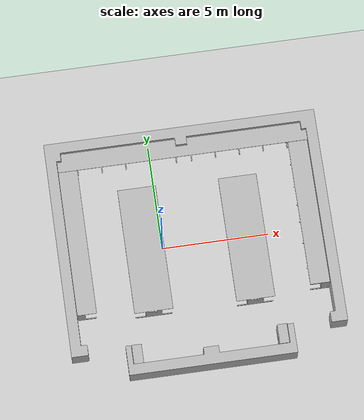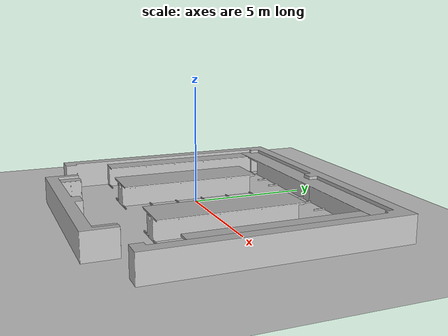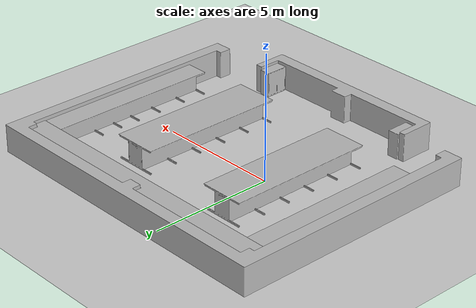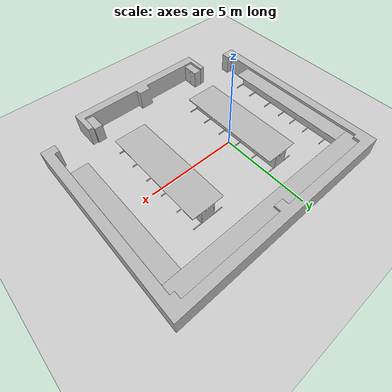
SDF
<sdf version="1.10">
 <world name="empty">
  <physics name="1ms" type="ignored">
   <max_step_size>0.001</max_step_size>
   <real_time_factor>1</real_time_factor>
   <real_time_update_rate>1000</real_time_update_rate>
  </physics>
  <plugin name="gz::sim::systems::Physics" filename="gz-sim-physics-system"/>
  <plugin name="gz::sim::systems::UserCommands" filename="gz-sim-user-commands-system"/>
  <plugin name="gz::sim::systems::SceneBroadcaster" filename="gz-sim-scene-broadcaster-system"/>
  <plugin name="gz::sim::systems::Sensors" filename="gz-sim-sensors-system"/>
  <plugin name="gz::sim::systems::Imu" filename="gz-sim-imu-system"/>
  <plugin name="gz::sim::systems::Contact" filename="gz-sim-contact-system"/>
  <gravity>0 0 -9.8000000000000007</gravity>
  <magnetic_field>5.5644999999999998e-06 2.2875799999999999e-05 -4.2388400000000002e-05</magnetic_field>
  <atmosphere type="adiabatic"/>
  <scene>
   <ambient>0.400000006 0.400000006 0.400000006 1</ambient>
   <background>0.699999988 0.699999988 0.699999988 1</background>
   <shadows>true</shadows>
  </scene>
  <model name="ground_plane">
   <static>true</static>
   <link name="link">
    <collision name="collision">
     <geometry><plane><normal>0 0 1</normal><size>100 100</size></plane></geometry>
    </collision>
    <visual name="visual">
     <geometry><plane><normal>0 0 1</normal><size>100 100</size></plane></geometry>
     <material>
      <ambient>0.800000012 0.800000012 0.800000012 1</ambient>
      <diffuse>0.800000012 0.800000012 0.800000012 1</diffuse>
      <specular>0.800000012 0.800000012 0.800000012 1</specular>
     </material>
    </visual>
    <inertial>
     <mass>1</mass>
     <inertia><ixx>1</ixx><ixy>0</ixy><ixz>0</ixz><iyy>1</iyy><iyz>0</iyz><izz>1</izz></inertia>
    </inertial>
   </link>
  </model>
  <model name="backside_wall">
   <link name="link">
    <visual name="visual">
     <geometry>
      <mesh>
       <uri>file:///home/abdvswmdr/Documents/afya_sim/src/model/backside_wall/meshes/backside_wall.obj</uri>
      </mesh>
     </geometry>
    </visual>
    <collision name="collision">
     <geometry>
      <mesh>
       <uri>file:///home/abdvswmdr/Documents/afya_sim/src/model/backside_wall/meshes/backside_wall.obj</uri>
      </mesh>
     </geometry>
    </collision>
    <inertial>
     <mass>1</mass>
     <inertia><ixx>1</ixx><ixy>0</ixy><ixz>0</ixz><iyy>1</iyy><iyz>0</iyz><izz>1</izz></inertia>
    </inertial>
   </link>
   <pose>-5 -5 -6.505213034905138e-19 1.5700000000000001 0 0</pose>
   <static>true</static>
  </model>
  <model name="front_wall">
   <link name="link">
    <visual name="visual">
     <geometry>
      <mesh><uri>file:///home/abdvswmdr/Documents/afya_sim/src/model/front_wall/meshes/front_wall.obj</uri></mesh>
     </geometry>
    </visual>
    <collision name="collision">
     <geometry>
      <mesh><uri>file:///home/abdvswmdr/Documents/afya_sim/src/model/front_wall/meshes/front_wall.obj</uri></mesh>
     </geometry>
    </collision>
    <inertial>
     <mass>1</mass>
     <inertia><ixx>1</ixx><ixy>0</ixy><ixz>0</ixz><iyy>1</iyy><iyz>0</iyz><izz>1</izz></inertia>
    </inertial>
   </link>
   <pose>-2.4300000000000002 -6.1500000000000021 -2.0599841276352893e-19 1.5700000000000001 0 0</pose>
   <static>true</static>
  </model>
  <model name="fyp_projectlab5">
   <link name="link">
    <visual name="visual">
     <geometry>
      <mesh>
       <uri>file:///home/abdvswmdr/Documents/afya_sim/src/model/fyp_projectlab5/meshes/fyp_projectlab5.dae</uri>
      </mesh>
     </geometry>
    </visual>
    <collision name="collision">
     <geometry>
      <mesh>
       <uri>file:///home/abdvswmdr/Documents/afya_sim/src/model/fyp_projectlab5/meshes/fyp_projectlab5.dae</uri>
      </mesh>
     </geometry>
    </collision>
    <inertial>
     <mass>1</mass>
     <inertia><ixx>1</ixx><ixy>0</ixy><ixz>0</ixz><iyy>1</iyy><iyz>0</iyz><izz>1</izz></inertia>
    </inertial>
   </link>
   <pose>3 -3.2999999999999998 0 0 0 0</pose>
   <static>true</static>
  </model>
  <model name="midtable2">
   <link name="link">
    <visual name="visual">
     <geometry>
      <mesh><uri>file:///home/abdvswmdr/Documents/afya_sim/src/model/midtable2/meshes/midtable2.obj</uri></mesh>
     </geometry>
    </visual>
    <collision name="collision">
     <geometry>
      <mesh><uri>file:///home/abdvswmdr/Documents/afya_sim/src/model/midtable2/meshes/midtable2.obj</uri></mesh>
     </geometry>
    </collision>
    <inertial>
     <mass>1</mass>
     <inertia><ixx>1</ixx><ixy>0</ixy><ixz>0</ixz><iyy>1</iyy><iyz>0</iyz><izz>1</izz></inertia>
    </inertial>
   </link>
   <pose>-1.8 -3.3000000000000007 1.0842021725387525e-19 1.5700000000000001 0 0</pose>
   <static>true</static>
  </model>
  <model name="safe_storage">
   <link name="link">
    <visual name="visual">
     <geometry>
      <mesh>
       <uri>file:///home/abdvswmdr/Documents/afya_sim/src/model/safe_storage/meshes/safe_storage.obj</uri>
      </mesh>
     </geometry>
    </visual>
    <collision name="collision">
     <geometry>
      <mesh>
       <uri>file:///home/abdvswmdr/Documents/afya_sim/src/model/safe_storage/meshes/safe_storage.obj</uri>
      </mesh>
     </geometry>
    </collision>
    <inertial>
     <mass>1</mass>
     <inertia><ixx>1</ixx><ixy>0</ixy><ixz>0</ixz><iyy>1</iyy><iyz>0</iyz><izz>1</izz></inertia>
    </inertial>
   </link>
   <pose>4.6299999999999999 -5.5900000000000007 -7.5894152073324639e-19 1.5700000000000001 0 0</pose>
   <static>true</static>
  </model>
  <model name="safe_storage_0">
   <link name="link">
    <visual name="visual">
     <geometry>
      <mesh>
       <uri>file:///home/abdvswmdr/Documents/afya_sim/src/model/safe_storage/meshes/safe_storage.obj</uri>
      </mesh>
     </geometry>
    </visual>
    <collision name="collision">
     <geometry>
      <mesh>
       <uri>file:///home/abdvswmdr/Documents/afya_sim/src/model/safe_storage/meshes/safe_storage.obj</uri>
      </mesh>
     </geometry>
    </collision>
    <inertial>
     <mass>1</mass>
     <inertia><ixx>1</ixx><ixy>0</ixy><ixz>0</ixz><iyy>1</iyy><iyz>0</iyz><izz>1</izz></inertia>
    </inertial>
   </link>
   <pose>-1.5499999999999998 -4.620000000000001 -6.317578665211469e-19 1.5700000000000001 1.341158087364569e-16 3.1400000000000001</pose>
   <static>true</static>
  </model>
  <model name="sidelong_table_left">
   <link name="link">
    <visual name="visual">
     <geometry>
      <mesh>
       <uri>file:///home/abdvswmdr/Documents/afya_sim/src/model/sidelong_table_left/meshes/sidelong_table_left.obj</uri>
      </mesh>
     </geometry>
    </visual>
    <collision name="collision">
     <geometry>
      <mesh>
       <uri>file:///home/abdvswmdr/Documents/afya_sim/src/model/sidelong_table_left/meshes/sidelong_table_left.obj</uri>
      </mesh>
     </geometry>
    </collision>
    <inertial>
     <mass>1</mass>
     <inertia><ixx>1</ixx><ixy>0</ixy><ixz>0</ixz><iyy>1</iyy><iyz>0</iyz><izz>1</izz></inertia>
    </inertial>
   </link>
   <pose>-4.5700000000000003 -3.0500000000000007 2.3852447800230734e-20 1.5700000000000001 0 0</pose>
   <static>true</static>
  </model>
  <model name="sidelong_table_right">
   <link name="link">
    <visual name="visual">
     <geometry>
      <mesh>
       <uri>file:///home/abdvswmdr/Documents/afya_sim/src/model/sidelong_table_right/meshes/sidelong_table_right.obj</uri>
      </mesh>
     </geometry>
    </visual>
    <collision name="collision">
     <geometry>
      <mesh>
       <uri>file:///home/abdvswmdr/Documents/afya_sim/src/model/sidelong_table_right/meshes/sidelong_table_right.obj</uri>
      </mesh>
     </geometry>
    </collision>
    <inertial>
     <mass>1</mass>
     <inertia><ixx>1</ixx><ixy>0</ixy><ixz>0</ixz><iyy>1</iyy><iyz>0</iyz><izz>1</izz></inertia>
    </inertial>
   </link>
   <pose>6.4000000000000004 -3.0500000000000003 3.5995512127250218e-19 1.5700000000000001 0 0</pose>
   <static>true</static>
  </model>
  <model name="rear_midtable">
   <link name="link">
    <visual name="visual">
     <geometry>
      <mesh>
       <uri>file:///home/abdvswmdr/Documents/afya_sim/src/model/rear_midtable/meshes/rear_midtable.obj</uri>
      </mesh>
     </geometry>
    </visual>
    <collision name="collision">
     <geometry>
      <mesh>
       <uri>file:///home/abdvswmdr/Documents/afya_sim/src/model/rear_midtable/meshes/rear_midtable.obj</uri>
      </mesh>
     </geometry>
    </collision>
    <inertial>
     <mass>1</mass>
     <inertia><ixx>1</ixx><ixy>0</ixy><ixz>0</ixz><iyy>1</iyy><iyz>0</iyz><izz>1</izz></inertia>
    </inertial>
   </link>
   <pose>-4.3600000000000003 4.0999999999999996 5.1824863844725465e-19 1.5700000000000001 0 0</pose>
   <static>true</static>
  </model>
  <light name="sun" type="directional">
   <pose>0 0 10 0 0 0</pose>
   <intensity>1</intensity>
   <direction>-0.5 0.10000000000000001 -0.90000000000000002</direction>
   <diffuse>0.800000012 0.800000012 0.800000012 1</diffuse>
   <specular>0.200000003 0.200000003 0.200000003 1</specular>
   <attenuation>
    <range>1000</range>
    <linear>0.01</linear>
    <constant>0.90000000000000002</constant>
    <quadratic>0.001</quadratic>
   </attenuation>
   <spot><inner_angle>0</inner_angle><outer_angle>0</outer_angle><falloff>0</falloff></spot>
  </light>
  <light name="directionallight" type="directional">
   <pose>-27.575082330153933 31.586916727807676 2 0 0 0</pose>
   <intensity>1</intensity>
   <direction>0 0 -1</direction>
   <diffuse>0.800000012 0.800000012 0.800000012 1</diffuse>
   <specular>0.200000003 0.200000003 0.200000003 1</specular>
   <attenuation>
    <range>1000</range>
    <linear>0.01</linear>
    <constant>0.90000000000000002</constant>
    <quadratic>0.001</quadratic>
   </attenuation>
   <spot><inner_angle>0</inner_angle><outer_angle>0</outer_angle><falloff>0</falloff></spot>
  </light>
 </world>
</sdf>
